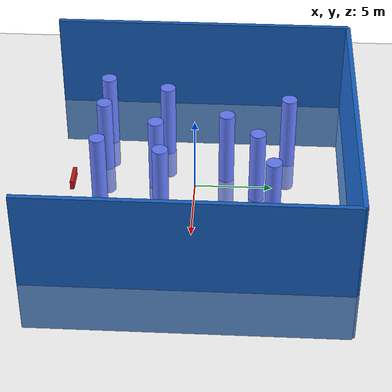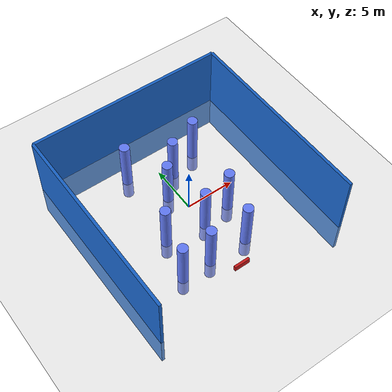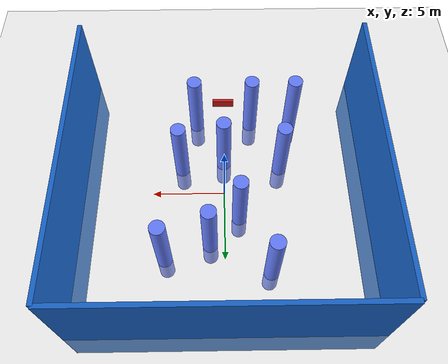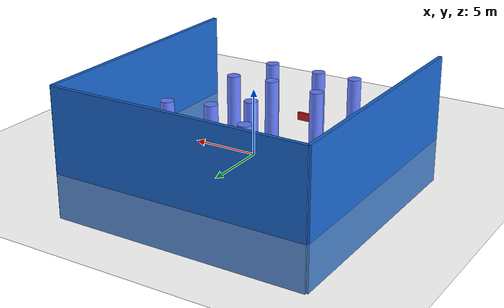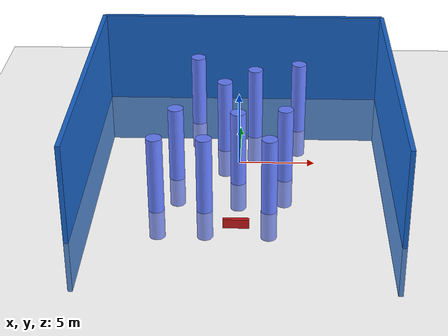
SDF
<?xml version="1.0" encoding="UTF-8"?>
<sdf version="1.9">
  <world name="walls">

    <physics name="default_physics" type="ode">
      <max_step_size>0.004</max_step_size>
      <real_time_factor>1.0</real_time_factor>
      <real_time_update_rate>250</real_time_update_rate>
    </physics>

    <spherical_coordinates>
      <surface_model>EARTH_WGS84</surface_model>
      <latitude_deg>35.1570</latitude_deg> <longitude_deg>128.0928</longitude_deg>  <elevation>0.0</elevation>
      <heading_deg>0</heading_deg>
    </spherical_coordinates>

    <scene>
      <ambient>0.4 0.4 0.4 1</ambient>
      <background>0.7 0.7 0.7 1</background>
      <shadows>true</shadows>
    </scene>

    <light type="directional" name="sun">
      <cast_shadows>true</cast_shadows>
      <pose>0 0 10 0 0 0</pose>
      <diffuse>0.8 0.8 0.8 1</diffuse>
      <specular>0.2 0.2 0.2 1</specular>
      <direction>-0.5 0.2 -1.0</direction>
    </light>

    <model name="ground_plane">
      <static>true</static>
      <link name="link">
        <collision name="collision">
          <geometry><plane><normal>0 0 1</normal><size>100 100</size></plane></geometry>
          <surface>
            <friction>
              <ode><mu>100</mu><mu2>50</mu2></ode>
            </friction>
          </surface>
        </collision>
        <visual name="visual">
          <geometry><plane><normal>0 0 1</normal><size>100 100</size></plane></geometry>
          <material>
            <script><uri>file://media/materials/scripts/gazebo.material</uri><name>Gazebo/Grey</name></script>
          </material>
        </visual>
      </link>
    </model>

    <model name="wall_south">
      <static>true</static>
      <pose>0 10 1.5 0 0 0</pose>
      <link name="link">
        <collision name="c"><geometry><box><size>20 0.3 10</size></box></geometry></collision>
        <visual name="v"><geometry><box><size>20 0.3 10</size></box></geometry><material><ambient>0.1 0.4 0.8 1</ambient></material></visual>
      </link>
    </model>

    <model name="wall_west">
      <static>true</static>
      <pose>-10 0 1.5 0 0 0</pose>
      <link name="link">
        <collision name="c"><geometry><box><size>0.3 20 10</size></box></geometry></collision>
        <visual name="v"><geometry><box><size>0.3 20 10</size></box></geometry><material><ambient>0.1 0.4 0.8 1</ambient></material></visual>
      </link>
    </model>

    <model name="wall_east">
      <static>true</static>
      <pose>10 0 1.5 0 0 0</pose>
      <link name="link">
        <collision name="c"><geometry><box><size>0.3 20 10</size></box></geometry></collision>
        <visual name="v"><geometry><box><size>0.3 20 10</size></box></geometry><material><ambient>0.1 0.4 0.8 1</ambient></material></visual>
      </link>
    </model>

    <model name="pillar_1"><static>true</static><pose>-5 -6 1.5 0 0 0</pose><link name="l"><collision name="c"><geometry><cylinder><radius>0.5</radius><length>7.0</length></cylinder></geometry></collision><visual name="v"><geometry><cylinder><radius>0.5</radius><length>7.0</length></cylinder></geometry><material><diffuse>0.4 0.5 1.0 1</diffuse></material></visual></link></model>

    <model name="pillar_2"><static>true</static><pose>-2 -6 1.5 0 0 0</pose><link name="l"><collision name="c"><geometry><cylinder><radius>0.5</radius><length>7.0</length></cylinder></geometry></collision><visual name="v"><geometry><cylinder><radius>0.5</radius><length>7.0</length></cylinder></geometry><material><diffuse>0.4 0.5 1.0 1</diffuse></material></visual></link></model>

    <model name="pillar_3"><static>true</static><pose>2 -6 1.5 0 0 0</pose><link name="l"><collision name="c"><geometry><cylinder><radius>0.5</radius><length>7.0</length></cylinder></geometry></collision><visual name="v"><geometry><cylinder><radius>0.5</radius><length>7.0</length></cylinder></geometry><material><diffuse>0.4 0.5 1.0 1</diffuse></material></visual></link></model>
    <model name="pillar_4"><static>true</static><pose>-4 -2 1.5 0 0 0</pose><link name="l"><collision name="c"><geometry><cylinder><radius>0.5</radius><length>7.0</length></cylinder></geometry></collision><visual name="v"><geometry><cylinder><radius>0.5</radius><length>7.0</length></cylinder></geometry><material><diffuse>0.4 0.5 1.0 1</diffuse></material></visual></link></model>
    <model name="pillar_5"><static>true</static><pose>0 -2.5 1.5 0 0 0</pose><link name="l"><collision name="c"><geometry><cylinder><radius>0.5</radius><length>7.0</length></cylinder></geometry></collision><visual name="v"><geometry><cylinder><radius>0.5</radius><length>7.0</length></cylinder></geometry><material><diffuse>0.4 0.5 1.0 1</diffuse></material></visual></link></model>

    <model name="pillar_6"><static>true</static><pose>3 -2 1.5 0 0 0</pose><link name="l"><collision name="c"><geometry><cylinder><radius>0.5</radius><length>7.0</length></cylinder></geometry></collision><visual name="v"><geometry><cylinder><radius>0.5</radius><length>7.0</length></cylinder></geometry><material><diffuse>0.4 0.5 1.0 1</diffuse></material></visual></link></model>
    <model name="pillar_7"><static>true</static><pose>-1 2 1.5 0 0 0</pose><link name="l"><collision name="c"><geometry><cylinder><radius>0.5</radius><length>7.0</length></cylinder></geometry></collision><visual name="v"><geometry><cylinder><radius>0.5</radius><length>7.0</length></cylinder></geometry><material><diffuse>0.4 0.5 1.0 1</diffuse></material></visual></link></model>
    <model name="pillar_8"><static>true</static><pose>1 4 1.5 0 0 0</pose><link name="l"><collision name="c"><geometry><cylinder><radius>0.5</radius><length>7.0</length></cylinder></geometry></collision><visual name="v"><geometry><cylinder><radius>0.5</radius><length>7.0</length></cylinder></geometry><material><diffuse>0.4 0.5 1.0 1</diffuse></material></visual></link></model>
    <model name="pillar_9"><static>true</static><pose>4 5 1.5 0 0 0</pose><link name="l"><collision name="c"><geometry><cylinder><radius>0.5</radius><length>7.0</length></cylinder></geometry></collision><visual name="v"><geometry><cylinder><radius>0.5</radius><length>7.0</length></cylinder></geometry><material><diffuse>0.4 0.5 1.0 1</diffuse></material></visual></link></model>
    <model name="pillar_10"><static>true</static><pose>-3 6 1.5 0 0 0</pose><link name="l"><collision name="c"><geometry><cylinder><radius>0.5</radius><length>7.0</length></cylinder></geometry></collision><visual name="v"><geometry><cylinder><radius>0.5</radius><length>7.0</length></cylinder></geometry><material><diffuse>0.4 0.5 1.0 1</diffuse></material></visual></link></model>
    <model name="fallen_person">
     <static>true</static>
     <pose>0 -8 0.3 0 1.5708 0</pose> <!-- y=-8 (North 벽 앞), z=0.3 (바닥 위) -->
     <link name="link">
       <visual name="v">
         <geometry><box><size>0.6 0.25 1.6</size></box></geometry>
         <material><ambient>0.8 0.1 0.1 1</ambient><diffuse>0.8 0.1 0.1 1</diffuse></material> <!-- 빨간색 -->
       </visual>
       <collision name="c">
         <geometry><box><size>0.6 0.25 1.6</size></box></geometry>
       </collision>
     </link>
   </model>
  </world>
</sdf>
